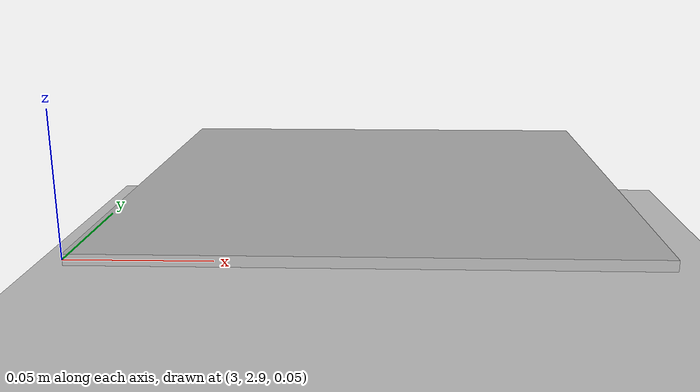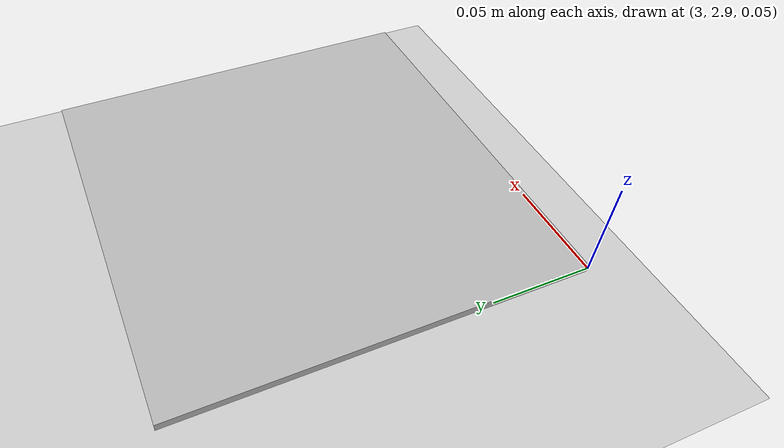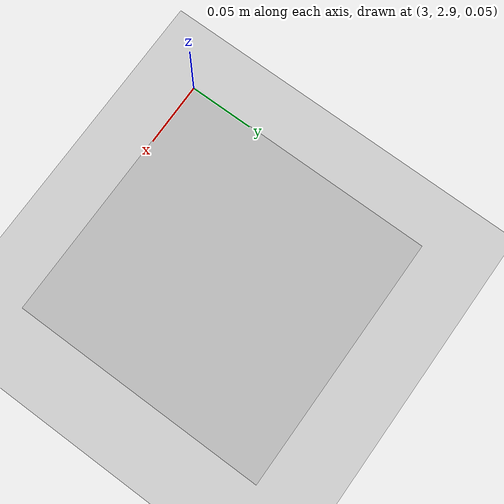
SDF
<?xml version="1.0" ?>
<sdf version="1.5">
  <world name="default">
    <!-- A global light source -->
    <include>
      <uri>model://sun</uri>
    </include>
    <!-- A ground plane -->
    <include>
      <uri>model://ground_plane</uri>
    </include>
    <include>
      <uri>model://asphalt_plane</uri>
    </include>
    <include>
      <uri>model://5x5_1000-122</uri>
      <pose>3.0 3.0 0.05 0 1.5701 0</pose>
    </include>
    <physics name='default_physics' default='0' type='ode'>
      <gravity>0 0 -9.8066</gravity>
      <ode>
        <solver>
          <type>quick</type>
          <iters>10</iters>
          <sor>1.3</sor>
          <use_dynamic_moi_rescaling>0</use_dynamic_moi_rescaling>
        </solver>
        <constraints>
          <cfm>0</cfm>
          <erp>0.2</erp>
          <contact_max_correcting_vel>100</contact_max_correcting_vel>
          <contact_surface_layer>0.001</contact_surface_layer>
        </constraints>
      </ode>
      <max_step_size>0.004</max_step_size>
      <real_time_factor>1</real_time_factor>
      <real_time_update_rate>250</real_time_update_rate>
      <magnetic_field>6.0e-6 2.3e-5 -4.2e-5</magnetic_field>
    </physics>
  </world>
</sdf>

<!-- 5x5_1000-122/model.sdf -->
<sdf version="1.6">
  <model name="5x5_1000-122">
    <static>true</static>
    <link name="link">
      <visual name="visual">
        <geometry>
          <mesh>
            <uri>model://5x5_1000-122/meshes/5x5_1000-122.dae</uri>
          <scale>0.4 0.4 0.4</scale></mesh>
        </geometry>
      </visual>
    </link>
  </model>
</sdf>
